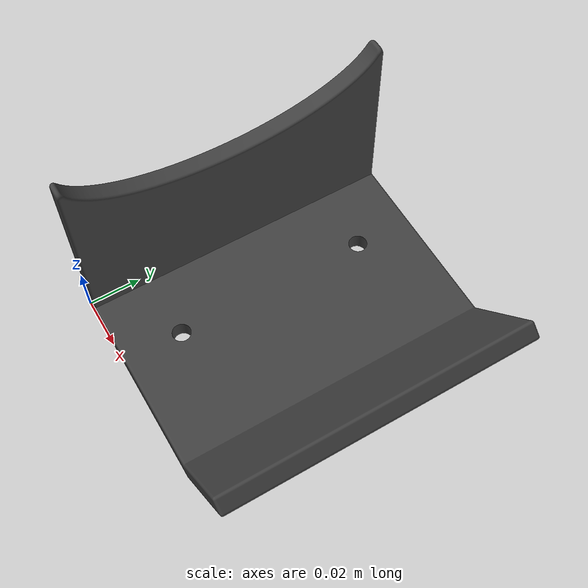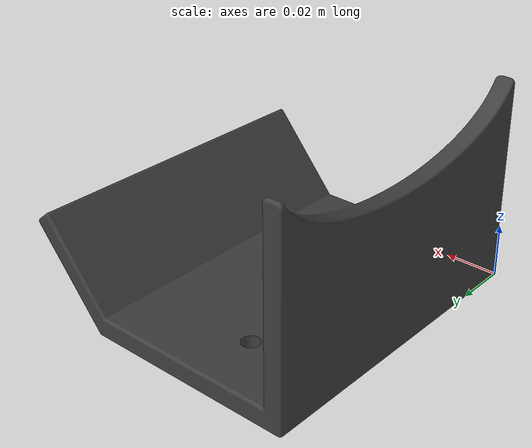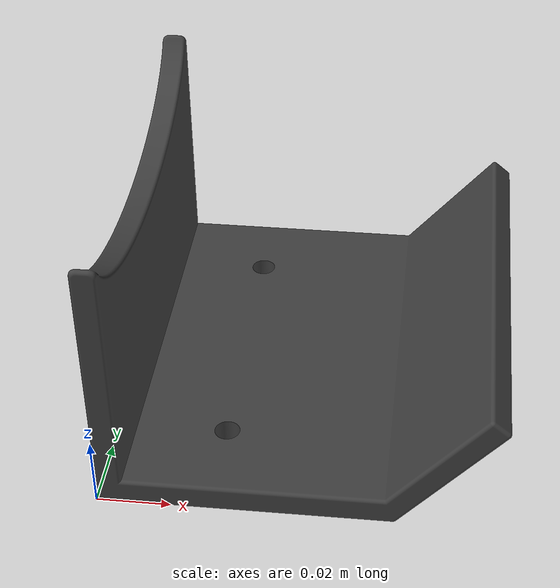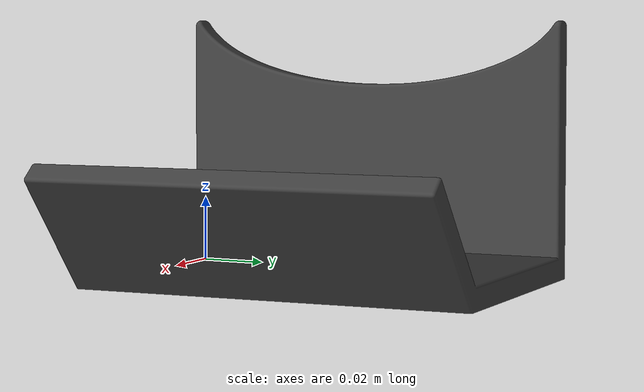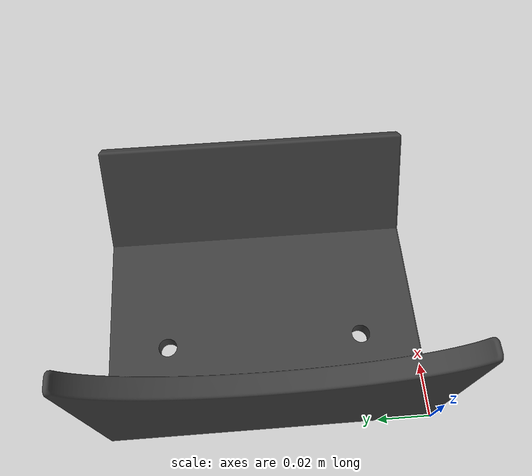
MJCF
<?xml version='1.0' encoding='utf-8'?>
<mujoco model="fixture">
  <asset>
    <mesh name="obj1" file="meshes/fixture/obj1.obj" scale="0.001 0.001 0.001" />
    <material name="mat1" rgba="0.24706 0.24706 0.24706 1" />
  </asset>
  <worldbody>
    <body>
      <body name="object">
        <geom name="obj1" mesh="obj1" type="mesh" contype="0" conaffinity="0" group="1" material="mat1" />
        <geom name="obj1" mesh="obj1" type="mesh" density="500" friction="1 0.005 0.0001" group="0" />
        <site name="bottom_site" pos="0 0 -0.025" size="0.005" rgba="0 0 0 0" />
        <site name="top_site" pos="0 0 0.025" size="0.005" rgba="0 0 0 0" />
        <site name="horizontal_radius_site" pos="0.03 0.03 0" size="0.005" rgba="0 0 0 0" />
      </body>
    </body>
  </worldbody>
</mujoco>
